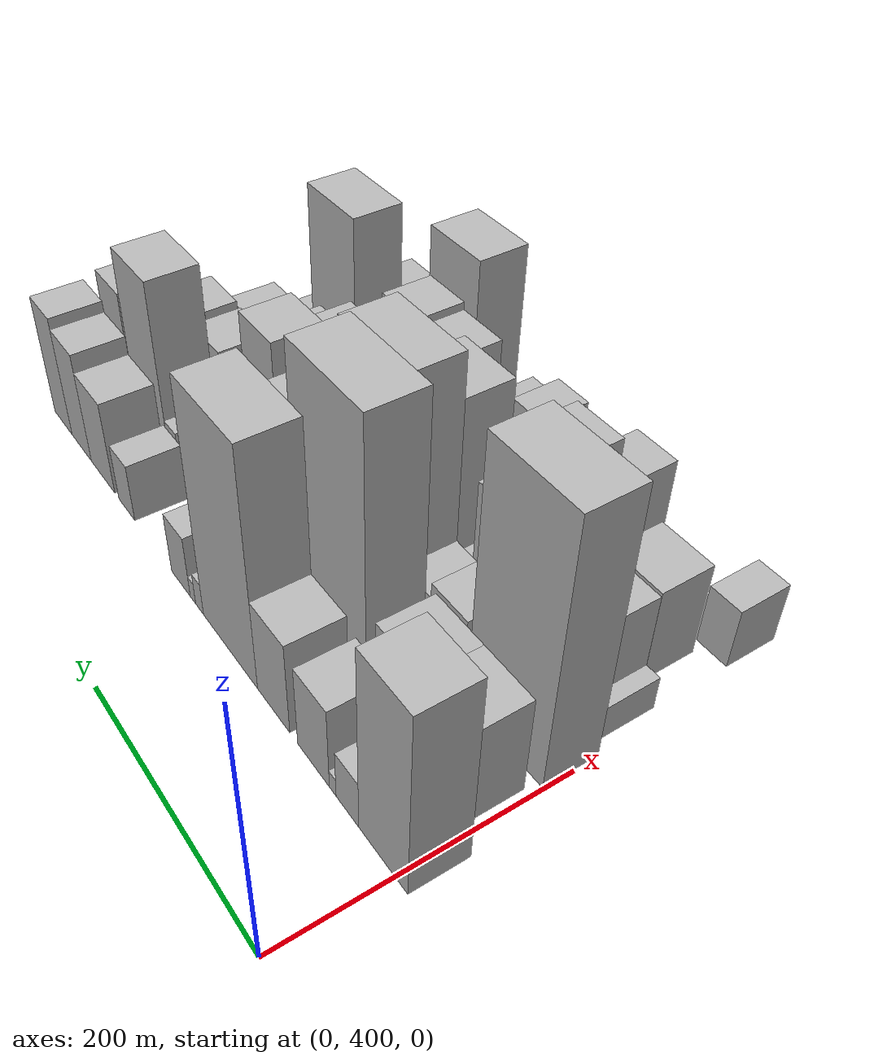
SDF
<sdf version="1.6">
 <world name="default">
  <model name="building_31">
   <static>1</static>
   <pose>100.0000 411.5241 0 0.000000 0.000000 0.000000</pose>
   <link name="link">
    <pose>0 0 73.50 0 0 0</pose>
    <collision name="collision"><geometry><box><size>40.0000 46.9688 147.0000</size></box></geometry></collision>
    <visual name="visual">
     <cast_shadows>0</cast_shadows>
     <geometry><box><size>40.0000 46.9688 147.0000</size></box></geometry>
     <material>
      <script>
       <uri>model://HANNAS_wall/materials/scripts</uri>
       <uri>model://HANNAS_wall/materials/textures</uri>
       <name>vrc/HANNAS_wall</name>
      </script>
     </material>
    </visual>
   </link>
  </model>
  <model name="building_32">
   <static>1</static>
   <pose>100.0000 446.6023 0 0.000000 0.000000 0.000000</pose>
   <link name="link">
    <pose>0 0 19.50 0 0 0</pose>
    <collision name="collision"><geometry><box><size>40.0000 23.1874 39.0000</size></box></geometry></collision>
    <visual name="visual">
     <cast_shadows>0</cast_shadows>
     <geometry><box><size>40.0000 23.1874 39.0000</size></box></geometry>
     <material>
      <script>
       <uri>model://HANNAS_wall/materials/scripts</uri>
       <uri>model://HANNAS_wall/materials/textures</uri>
       <name>vrc/HANNAS_wall</name>
      </script>
     </material>
    </visual>
   </link>
  </model>
  <model name="building_33">
   <static>1</static>
   <pose>100.0000 461.7570 0 0.000000 0.000000 0.000000</pose>
   <link name="link">
    <pose>0 0 7.50 0 0 0</pose>
    <collision name="collision"><geometry><box><size>40.0000 7.1221 15.0000</size></box></geometry></collision>
    <visual name="visual">
     <cast_shadows>0</cast_shadows>
     <geometry><box><size>40.0000 7.1221 15.0000</size></box></geometry>
     <material>
      <script>
       <uri>model://HANNAS_wall/materials/scripts</uri>
       <uri>model://HANNAS_wall/materials/textures</uri>
       <name>vrc/HANNAS_wall</name>
      </script>
     </material>
    </visual>
   </link>
  </model>
  <model name="building_34">
   <static>1</static>
   <pose>100.0000 482.5764 0 0.000000 0.000000 0.000000</pose>
   <link name="link">
    <pose>0 0 33.00 0 0 0</pose>
    <collision name="collision"><geometry><box><size>40.0000 34.5167 66.0000</size></box></geometry></collision>
    <visual name="visual">
     <cast_shadows>0</cast_shadows>
     <geometry><box><size>40.0000 34.5167 66.0000</size></box></geometry>
     <material>
      <script>
       <uri>model://HANNAS_wall/materials/scripts</uri>
       <uri>model://HANNAS_wall/materials/textures</uri>
       <name>vrc/HANNAS_wall</name>
      </script>
     </material>
    </visual>
   </link>
  </model>
  <model name="building_35">
   <static>1</static>
   <pose>100.0000 527.8713 0 0.000000 0.000000 0.000000</pose>
   <link name="link">
    <pose>0 0 37.50 0 0 0</pose>
    <collision name="collision"><geometry><box><size>40.0000 38.0731 75.0000</size></box></geometry></collision>
    <visual name="visual">
     <cast_shadows>0</cast_shadows>
     <geometry><box><size>40.0000 38.0731 75.0000</size></box></geometry>
     <material>
      <script>
       <uri>model://HANNAS_wall/materials/scripts</uri>
       <uri>model://HANNAS_wall/materials/textures</uri>
       <name>vrc/HANNAS_wall</name>
      </script>
     </material>
    </visual>
   </link>
  </model>
  <model name="building_36">
   <static>1</static>
   <pose>100.0000 582.0169 0 0.000000 0.000000 0.000000</pose>
   <link name="link">
    <pose>0 0 94.50 0 0 0</pose>
    <collision name="collision"><geometry><box><size>40.0000 70.2179 189.0000</size></box></geometry></collision>
    <visual name="visual">
     <cast_shadows>0</cast_shadows>
     <geometry><box><size>40.0000 70.2179 189.0000</size></box></geometry>
     <material>
      <script>
       <uri>model://HANNAS_wall/materials/scripts</uri>
       <uri>model://HANNAS_wall/materials/textures</uri>
       <name>vrc/HANNAS_wall</name>
      </script>
     </material>
    </visual>
   </link>
  </model>
  <model name="building_37">
   <static>1</static>
   <pose>100.0000 622.5473 0 0.000000 0.000000 0.000000</pose>
   <link name="link">
    <pose>0 0 13.50 0 0 0</pose>
    <collision name="collision"><geometry><box><size>40.0000 10.8430 27.0000</size></box></geometry></collision>
    <visual name="visual">
     <cast_shadows>0</cast_shadows>
     <geometry><box><size>40.0000 10.8430 27.0000</size></box></geometry>
     <material>
      <script>
       <uri>model://HANNAS_wall/materials/scripts</uri>
       <uri>model://HANNAS_wall/materials/textures</uri>
       <name>vrc/HANNAS_wall</name>
      </script>
     </material>
    </visual>
   </link>
  </model>
  <model name="building_38">
   <static>1</static>
   <pose>100.0000 631.7565 0 0.000000 0.000000 0.000000</pose>
   <link name="link">
    <pose>0 0 9.00 0 0 0</pose>
    <collision name="collision"><geometry><box><size>40.0000 7.5754 18.0000</size></box></geometry></collision>
    <visual name="visual">
     <cast_shadows>0</cast_shadows>
     <geometry><box><size>40.0000 7.5754 18.0000</size></box></geometry>
     <material>
      <script>
       <uri>model://HANNAS_wall/materials/scripts</uri>
       <uri>model://HANNAS_wall/materials/textures</uri>
       <name>vrc/HANNAS_wall</name>
      </script>
     </material>
    </visual>
   </link>
  </model>
  <model name="building_39">
   <static>1</static>
   <pose>100.0000 648.9793 0 0.000000 0.000000 0.000000</pose>
   <link name="link">
    <pose>0 0 25.50 0 0 0</pose>
    <collision name="collision"><geometry><box><size>40.0000 26.8701 51.0000</size></box></geometry></collision>
    <visual name="visual">
     <cast_shadows>0</cast_shadows>
     <geometry><box><size>40.0000 26.8701 51.0000</size></box></geometry>
     <material>
      <script>
       <uri>model://HANNAS_wall/materials/scripts</uri>
       <uri>model://HANNAS_wall/materials/textures</uri>
       <name>vrc/HANNAS_wall</name>
      </script>
     </material>
    </visual>
   </link>
  </model>
  <model name="building_40">
   <static>1</static>
   <pose>100.0000 732.4830 0 0.000000 0.000000 0.000000</pose>
   <link name="link">
    <pose>0 0 24.00 0 0 0</pose>
    <collision name="collision"><geometry><box><size>40.0000 26.0458 48.0000</size></box></geometry></collision>
    <visual name="visual">
     <cast_shadows>0</cast_shadows>
     <geometry><box><size>40.0000 26.0458 48.0000</size></box></geometry>
     <material>
      <script>
       <uri>model://HANNAS_wall/materials/scripts</uri>
       <uri>model://HANNAS_wall/materials/textures</uri>
       <name>vrc/HANNAS_wall</name>
      </script>
     </material>
    </visual>
   </link>
  </model>
  <model name="building_41">
   <static>1</static>
   <pose>100.0000 772.8730 0 0.000000 0.000000 0.000000</pose>
   <link name="link">
    <pose>0 0 39.00 0 0 0</pose>
    <collision name="collision"><geometry><box><size>40.0000 40.7342 78.0000</size></box></geometry></collision>
    <visual name="visual">
     <cast_shadows>0</cast_shadows>
     <geometry><box><size>40.0000 40.7342 78.0000</size></box></geometry>
     <material>
      <script>
       <uri>model://HANNAS_wall/materials/scripts</uri>
       <uri>model://HANNAS_wall/materials/textures</uri>
       <name>vrc/HANNAS_wall</name>
      </script>
     </material>
    </visual>
   </link>
  </model>
  <model name="building_42">
   <static>1</static>
   <pose>100.0000 810.9288 0 0.000000 0.000000 0.000000</pose>
   <link name="link">
    <pose>0 0 46.50 0 0 0</pose>
    <collision name="collision"><geometry><box><size>40.0000 35.3773 93.0000</size></box></geometry></collision>
    <visual name="visual">
     <cast_shadows>0</cast_shadows>
     <geometry><box><size>40.0000 35.3773 93.0000</size></box></geometry>
     <material>
      <script>
       <uri>model://HANNAS_wall/materials/scripts</uri>
       <uri>model://HANNAS_wall/materials/textures</uri>
       <name>vrc/HANNAS_wall</name>
      </script>
     </material>
    </visual>
   </link>
  </model>
  <model name="building_43">
   <static>1</static>
   <pose>100.0000 845.0833 0 0.000000 0.000000 0.000000</pose>
   <link name="link">
    <pose>0 0 51.00 0 0 0</pose>
    <collision name="collision"><geometry><box><size>40.0000 32.9317 102.0000</size></box></geometry></collision>
    <visual name="visual">
     <cast_shadows>0</cast_shadows>
     <geometry><box><size>40.0000 32.9317 102.0000</size></box></geometry>
     <material>
      <script>
       <uri>model://HANNAS_wall/materials/scripts</uri>
       <uri>model://HANNAS_wall/materials/textures</uri>
       <name>vrc/HANNAS_wall</name>
      </script>
     </material>
    </visual>
   </link>
  </model>
  <model name="building_82">
   <static>1</static>
   <pose>149.0000 427.5921 0 0.000000 0.000000 0.000000</pose>
   <link name="link">
    <pose>0 0 39.00 0 0 0</pose>
    <collision name="collision"><geometry><box><size>40.0000 43.9089 78.0000</size></box></geometry></collision>
    <visual name="visual">
     <cast_shadows>0</cast_shadows>
     <geometry><box><size>40.0000 43.9089 78.0000</size></box></geometry>
     <material>
      <script>
       <uri>model://HANNAS_wall/materials/scripts</uri>
       <uri>model://HANNAS_wall/materials/textures</uri>
       <name>vrc/HANNAS_wall</name>
      </script>
     </material>
    </visual>
   </link>
  </model>
  <model name="building_83">
   <static>1</static>
   <pose>149.0000 471.7200 0 0.000000 0.000000 0.000000</pose>
   <link name="link">
    <pose>0 0 39.00 0 0 0</pose>
    <collision name="collision"><geometry><box><size>40.0000 44.3469 78.0000</size></box></geometry></collision>
    <visual name="visual">
     <cast_shadows>0</cast_shadows>
     <geometry><box><size>40.0000 44.3469 78.0000</size></box></geometry>
     <material>
      <script>
       <uri>model://HANNAS_wall/materials/scripts</uri>
       <uri>model://HANNAS_wall/materials/textures</uri>
       <name>vrc/HANNAS_wall</name>
      </script>
     </material>
    </visual>
   </link>
  </model>
  <model name="building_84">
   <static>1</static>
   <pose>149.0000 541.4995 0 0.000000 0.000000 0.000000</pose>
   <link name="link">
    <pose>0 0 108.00 0 0 0</pose>
    <collision name="collision"><geometry><box><size>40.0000 75.2121 216.0000</size></box></geometry></collision>
    <visual name="visual">
     <cast_shadows>0</cast_shadows>
     <geometry><box><size>40.0000 75.2121 216.0000</size></box></geometry>
     <material>
      <script>
       <uri>model://HANNAS_wall/materials/scripts</uri>
       <uri>model://HANNAS_wall/materials/textures</uri>
       <name>vrc/HANNAS_wall</name>
      </script>
     </material>
    </visual>
   </link>
  </model>
  <model name="building_85">
   <static>1</static>
   <pose>149.0000 606.3390 0 0.000000 0.000000 0.000000</pose>
   <link name="link">
    <pose>0 0 73.50 0 0 0</pose>
    <collision name="collision"><geometry><box><size>40.0000 54.4669 147.0000</size></box></geometry></collision>
    <visual name="visual">
     <cast_shadows>0</cast_shadows>
     <geometry><box><size>40.0000 54.4669 147.0000</size></box></geometry>
     <material>
      <script>
       <uri>model://HANNAS_wall/materials/scripts</uri>
       <uri>model://HANNAS_wall/materials/textures</uri>
       <name>vrc/HANNAS_wall</name>
      </script>
     </material>
    </visual>
   </link>
  </model>
  <model name="building_86">
   <static>1</static>
   <pose>149.0000 657.2133 0 0.000000 0.000000 0.000000</pose>
   <link name="link">
    <pose>0 0 30.00 0 0 0</pose>
    <collision name="collision"><geometry><box><size>40.0000 31.2817 60.0000</size></box></geometry></collision>
    <visual name="visual">
     <cast_shadows>0</cast_shadows>
     <geometry><box><size>40.0000 31.2817 60.0000</size></box></geometry>
     <material>
      <script>
       <uri>model://HANNAS_wall/materials/scripts</uri>
       <uri>model://HANNAS_wall/materials/textures</uri>
       <name>vrc/HANNAS_wall</name>
      </script>
     </material>
    </visual>
   </link>
  </model>
  <model name="building_87">
   <static>1</static>
   <pose>149.0000 701.8061 0 0.000000 0.000000 0.000000</pose>
   <link name="link">
    <pose>0 0 49.50 0 0 0</pose>
    <collision name="collision"><geometry><box><size>40.0000 37.9039 99.0000</size></box></geometry></collision>
    <visual name="visual">
     <cast_shadows>0</cast_shadows>
     <geometry><box><size>40.0000 37.9039 99.0000</size></box></geometry>
     <material>
      <script>
       <uri>model://HANNAS_wall/materials/scripts</uri>
       <uri>model://HANNAS_wall/materials/textures</uri>
       <name>vrc/HANNAS_wall</name>
      </script>
     </material>
    </visual>
   </link>
  </model>
  <model name="building_88">
   <static>1</static>
   <pose>149.0000 730.8676 0 0.000000 0.000000 0.000000</pose>
   <link name="link">
    <pose>0 0 19.50 0 0 0</pose>
    <collision name="collision"><geometry><box><size>40.0000 20.2190 39.0000</size></box></geometry></collision>
    <visual name="visual">
     <cast_shadows>0</cast_shadows>
     <geometry><box><size>40.0000 20.2190 39.0000</size></box></geometry>
     <material>
      <script>
       <uri>model://HANNAS_wall/materials/scripts</uri>
       <uri>model://HANNAS_wall/materials/textures</uri>
       <name>vrc/HANNAS_wall</name>
      </script>
     </material>
    </visual>
   </link>
  </model>
  <model name="building_89">
   <static>1</static>
   <pose>149.0000 745.3936 0 0.000000 0.000000 0.000000</pose>
   <link name="link">
    <pose>0 0 9.00 0 0 0</pose>
    <collision name="collision"><geometry><box><size>40.0000 8.8329 18.0000</size></box></geometry></collision>
    <visual name="visual">
     <cast_shadows>0</cast_shadows>
     <geometry><box><size>40.0000 8.8329 18.0000</size></box></geometry>
     <material>
      <script>
       <uri>model://HANNAS_wall/materials/scripts</uri>
       <uri>model://HANNAS_wall/materials/textures</uri>
       <name>vrc/HANNAS_wall</name>
      </script>
     </material>
    </visual>
   </link>
  </model>
  <model name="building_90">
   <static>1</static>
   <pose>149.0000 758.5510 0 0.000000 0.000000 0.000000</pose>
   <link name="link">
    <pose>0 0 16.50 0 0 0</pose>
    <collision name="collision"><geometry><box><size>40.0000 17.4819 33.0000</size></box></geometry></collision>
    <visual name="visual">
     <cast_shadows>0</cast_shadows>
     <geometry><box><size>40.0000 17.4819 33.0000</size></box></geometry>
     <material>
      <script>
       <uri>model://HANNAS_wall/materials/scripts</uri>
       <uri>model://HANNAS_wall/materials/textures</uri>
       <name>vrc/HANNAS_wall</name>
      </script>
     </material>
    </visual>
   </link>
  </model>
  <model name="building_91">
   <static>1</static>
   <pose>149.0000 793.0292 0 0.000000 0.000000 0.000000</pose>
   <link name="link">
    <pose>0 0 73.50 0 0 0</pose>
    <collision name="collision"><geometry><box><size>40.0000 51.4746 147.0000</size></box></geometry></collision>
    <visual name="visual">
     <cast_shadows>0</cast_shadows>
     <geometry><box><size>40.0000 51.4746 147.0000</size></box></geometry>
     <material>
      <script>
       <uri>model://HANNAS_wall/materials/scripts</uri>
       <uri>model://HANNAS_wall/materials/textures</uri>
       <name>vrc/HANNAS_wall</name>
      </script>
     </material>
    </visual>
   </link>
  </model>
  <model name="building_92">
   <static>1</static>
   <pose>149.0000 840.5833 0 0.000000 0.000000 0.000000</pose>
   <link name="link">
    <pose>0 0 54.00 0 0 0</pose>
    <collision name="collision"><geometry><box><size>40.0000 37.6337 108.0000</size></box></geometry></collision>
    <visual name="visual">
     <cast_shadows>0</cast_shadows>
     <geometry><box><size>40.0000 37.6337 108.0000</size></box></geometry>
     <material>
      <script>
       <uri>model://HANNAS_wall/materials/scripts</uri>
       <uri>model://HANNAS_wall/materials/textures</uri>
       <name>vrc/HANNAS_wall</name>
      </script>
     </material>
    </visual>
   </link>
  </model>
  <model name="building_127">
   <static>1</static>
   <pose>198.0000 436.0220 0 0.000000 0.000000 0.000000</pose>
   <link name="link">
    <pose>0 0 103.50 0 0 0</pose>
    <collision name="collision"><geometry><box><size>40.0000 70.9859 207.0000</size></box></geometry></collision>
    <visual name="visual">
     <cast_shadows>0</cast_shadows>
     <geometry><box><size>40.0000 70.9859 207.0000</size></box></geometry>
     <material>
      <script>
       <uri>model://HANNAS_wall/materials/scripts</uri>
       <uri>model://HANNAS_wall/materials/textures</uri>
       <name>vrc/HANNAS_wall</name>
      </script>
     </material>
    </visual>
   </link>
  </model>
  <model name="building_128">
   <static>1</static>
   <pose>198.0000 493.1059 0 0.000000 0.000000 0.000000</pose>
   <link name="link">
    <pose>0 0 33.00 0 0 0</pose>
    <collision name="collision"><geometry><box><size>40.0000 35.1818 66.0000</size></box></geometry></collision>
    <visual name="visual">
     <cast_shadows>0</cast_shadows>
     <geometry><box><size>40.0000 35.1818 66.0000</size></box></geometry>
     <material>
      <script>
       <uri>model://HANNAS_wall/materials/scripts</uri>
       <uri>model://HANNAS_wall/materials/textures</uri>
       <name>vrc/HANNAS_wall</name>
      </script>
     </material>
    </visual>
   </link>
  </model>
  <model name="building_129">
   <static>1</static>
   <pose>198.0000 525.6254 0 0.000000 0.000000 0.000000</pose>
   <link name="link">
    <pose>0 0 27.00 0 0 0</pose>
    <collision name="collision"><geometry><box><size>40.0000 29.8573 54.0000</size></box></geometry></collision>
    <visual name="visual">
     <cast_shadows>0</cast_shadows>
     <geometry><box><size>40.0000 29.8573 54.0000</size></box></geometry>
     <material>
      <script>
       <uri>model://HANNAS_wall/materials/scripts</uri>
       <uri>model://HANNAS_wall/materials/textures</uri>
       <name>vrc/HANNAS_wall</name>
      </script>
     </material>
    </visual>
   </link>
  </model>
  <model name="building_130">
   <static>1</static>
   <pose>198.0000 574.1125 0 0.000000 0.000000 0.000000</pose>
   <link name="link">
    <pose>0 0 97.50 0 0 0</pose>
    <collision name="collision"><geometry><box><size>40.0000 67.1168 195.0000</size></box></geometry></collision>
    <visual name="visual">
     <cast_shadows>0</cast_shadows>
     <geometry><box><size>40.0000 67.1168 195.0000</size></box></geometry>
     <material>
      <script>
       <uri>model://HANNAS_wall/materials/scripts</uri>
       <uri>model://HANNAS_wall/materials/textures</uri>
       <name>vrc/HANNAS_wall</name>
      </script>
     </material>
    </visual>
   </link>
  </model>
  <model name="building_131">
   <static>1</static>
   <pose>198.0000 627.4312 0 0.000000 0.000000 0.000000</pose>
   <link name="link">
    <pose>0 0 18.00 0 0 0</pose>
    <collision name="collision"><geometry><box><size>40.0000 21.5207 36.0000</size></box></geometry></collision>
    <visual name="visual">
     <cast_shadows>0</cast_shadows>
     <geometry><box><size>40.0000 21.5207 36.0000</size></box></geometry>
     <material>
      <script>
       <uri>model://HANNAS_wall/materials/scripts</uri>
       <uri>model://HANNAS_wall/materials/textures</uri>
       <name>vrc/HANNAS_wall</name>
      </script>
     </material>
    </visual>
   </link>
  </model>
  <model name="building_132">
   <static>1</static>
   <pose>198.0000 648.4040 0 0.000000 0.000000 0.000000</pose>
   <link name="link">
    <pose>0 0 9.00 0 0 0</pose>
    <collision name="collision"><geometry><box><size>40.0000 8.4249 18.0000</size></box></geometry></collision>
    <visual name="visual">
     <cast_shadows>0</cast_shadows>
     <geometry><box><size>40.0000 8.4249 18.0000</size></box></geometry>
     <material>
      <script>
       <uri>model://HANNAS_wall/materials/scripts</uri>
       <uri>model://HANNAS_wall/materials/textures</uri>
       <name>vrc/HANNAS_wall</name>
      </script>
     </material>
    </visual>
   </link>
  </model>
  <model name="building_133">
   <static>1</static>
   <pose>198.0000 671.7233 0 0.000000 0.000000 0.000000</pose>
   <link name="link">
    <pose>0 0 34.50 0 0 0</pose>
    <collision name="collision"><geometry><box><size>40.0000 38.2138 69.0000</size></box></geometry></collision>
    <visual name="visual">
     <cast_shadows>0</cast_shadows>
     <geometry><box><size>40.0000 38.2138 69.0000</size></box></geometry>
     <material>
      <script>
       <uri>model://HANNAS_wall/materials/scripts</uri>
       <uri>model://HANNAS_wall/materials/textures</uri>
       <name>vrc/HANNAS_wall</name>
      </script>
     </material>
    </visual>
   </link>
  </model>
  <model name="building_134">
   <static>1</static>
   <pose>198.0000 712.3337 0 0.000000 0.000000 0.000000</pose>
   <link name="link">
    <pose>0 0 63.00 0 0 0</pose>
    <collision name="collision"><geometry><box><size>40.0000 43.0070 126.0000</size></box></geometry></collision>
    <visual name="visual">
     <cast_shadows>0</cast_shadows>
     <geometry><box><size>40.0000 43.0070 126.0000</size></box></geometry>
     <material>
      <script>
       <uri>model://HANNAS_wall/materials/scripts</uri>
       <uri>model://HANNAS_wall/materials/textures</uri>
       <name>vrc/HANNAS_wall</name>
      </script>
     </material>
    </visual>
   </link>
  </model>
  <model name="building_135">
   <static>1</static>
   <pose>198.0000 737.2312 0 0.000000 0.000000 0.000000</pose>
   <link name="link">
    <pose>0 0 7.50 0 0 0</pose>
    <collision name="collision"><geometry><box><size>40.0000 6.7880 15.0000</size></box></geometry></collision>
    <visual name="visual">
     <cast_shadows>0</cast_shadows>
     <geometry><box><size>40.0000 6.7880 15.0000</size></box></geometry>
     <material>
      <script>
       <uri>model://HANNAS_wall/materials/scripts</uri>
       <uri>model://HANNAS_wall/materials/textures</uri>
       <name>vrc/HANNAS_wall</name>
      </script>
     </material>
    </visual>
   </link>
  </model>
  <model name="building_136">
   <static>1</static>
   <pose>198.0000 753.7801 0 0.000000 0.000000 0.000000</pose>
   <link name="link">
    <pose>0 0 25.50 0 0 0</pose>
    <collision name="collision"><geometry><box><size>40.0000 26.3097 51.0000</size></box></geometry></collision>
    <visual name="visual">
     <cast_shadows>0</cast_shadows>
     <geometry><box><size>40.0000 26.3097 51.0000</size></box></geometry>
     <material>
      <script>
       <uri>model://HANNAS_wall/materials/scripts</uri>
       <uri>model://HANNAS_wall/materials/textures</uri>
       <name>vrc/HANNAS_wall</name>
      </script>
     </material>
    </visual>
   </link>
  </model>
  <model name="building_137">
   <static>1</static>
   <pose>198.0000 793.5846 0 0.000000 0.000000 0.000000</pose>
   <link name="link">
    <pose>0 0 34.50 0 0 0</pose>
    <collision name="collision"><geometry><box><size>40.0000 41.2993 69.0000</size></box></geometry></collision>
    <visual name="visual">
     <cast_shadows>0</cast_shadows>
     <geometry><box><size>40.0000 41.2993 69.0000</size></box></geometry>
     <material>
      <script>
       <uri>model://HANNAS_wall/materials/scripts</uri>
       <uri>model://HANNAS_wall/materials/textures</uri>
       <name>vrc/HANNAS_wall</name>
      </script>
     </material>
    </visual>
   </link>
  </model>
  <model name="building_138">
   <static>1</static>
   <pose>198.0000 839.7698 0 0.000000 0.000000 0.000000</pose>
   <link name="link">
    <pose>0 0 36.00 0 0 0</pose>
    <collision name="collision"><geometry><box><size>40.0000 41.0711 72.0000</size></box></geometry></collision>
    <visual name="visual">
     <cast_shadows>0</cast_shadows>
     <geometry><box><size>40.0000 41.0711 72.0000</size></box></geometry>
     <material>
      <script>
       <uri>model://HANNAS_wall/materials/scripts</uri>
       <uri>model://HANNAS_wall/materials/textures</uri>
       <name>vrc/HANNAS_wall</name>
      </script>
     </material>
    </visual>
   </link>
  </model>
  <model name="building_173">
   <static>1</static>
   <pose>247.0000 414.3676 0 0.000000 0.000000 0.000000</pose>
   <link name="link">
    <pose>0 0 13.50 0 0 0</pose>
    <collision name="collision"><geometry><box><size>40.0000 11.6138 27.0000</size></box></geometry></collision>
    <visual name="visual">
     <cast_shadows>0</cast_shadows>
     <geometry><box><size>40.0000 11.6138 27.0000</size></box></geometry>
     <material>
      <script>
       <uri>model://HANNAS_wall/materials/scripts</uri>
       <uri>model://HANNAS_wall/materials/textures</uri>
       <name>vrc/HANNAS_wall</name>
      </script>
     </material>
    </visual>
   </link>
  </model>
  <model name="building_174">
   <static>1</static>
   <pose>247.0000 441.8218 0 0.000000 0.000000 0.000000</pose>
   <link name="link">
    <pose>0 0 42.00 0 0 0</pose>
    <collision name="collision"><geometry><box><size>40.0000 43.2946 84.0000</size></box></geometry></collision>
    <visual name="visual">
     <cast_shadows>0</cast_shadows>
     <geometry><box><size>40.0000 43.2946 84.0000</size></box></geometry>
     <material>
      <script>
       <uri>model://HANNAS_wall/materials/scripts</uri>
       <uri>model://HANNAS_wall/materials/textures</uri>
       <name>vrc/HANNAS_wall</name>
      </script>
     </material>
    </visual>
   </link>
  </model>
  <model name="building_175">
   <static>1</static>
   <pose>247.0000 485.3087 0 0.000000 0.000000 0.000000</pose>
   <link name="link">
    <pose>0 0 27.00 0 0 0</pose>
    <collision name="collision"><geometry><box><size>40.0000 31.6792 54.0000</size></box></geometry></collision>
    <visual name="visual">
     <cast_shadows>0</cast_shadows>
     <geometry><box><size>40.0000 31.6792 54.0000</size></box></geometry>
     <material>
      <script>
       <uri>model://HANNAS_wall/materials/scripts</uri>
       <uri>model://HANNAS_wall/materials/textures</uri>
       <name>vrc/HANNAS_wall</name>
      </script>
     </material>
    </visual>
   </link>
  </model>
  <model name="building_176">
   <static>1</static>
   <pose>247.0000 519.5720 0 0.000000 0.000000 0.000000</pose>
   <link name="link">
    <pose>0 0 51.00 0 0 0</pose>
    <collision name="collision"><geometry><box><size>40.0000 30.8474 102.0000</size></box></geometry></collision>
    <visual name="visual">
     <cast_shadows>0</cast_shadows>
     <geometry><box><size>40.0000 30.8474 102.0000</size></box></geometry>
     <material>
      <script>
       <uri>model://HANNAS_wall/materials/scripts</uri>
       <uri>model://HANNAS_wall/materials/textures</uri>
       <name>vrc/HANNAS_wall</name>
      </script>
     </material>
    </visual>
   </link>
  </model>
  <model name="building_177">
   <static>1</static>
   <pose>247.0000 543.6154 0 0.000000 0.000000 0.000000</pose>
   <link name="link">
    <pose>0 0 15.00 0 0 0</pose>
    <collision name="collision"><geometry><box><size>40.0000 17.2395 30.0000</size></box></geometry></collision>
    <visual name="visual">
     <cast_shadows>0</cast_shadows>
     <geometry><box><size>40.0000 17.2395 30.0000</size></box></geometry>
     <material>
      <script>
       <uri>model://HANNAS_wall/materials/scripts</uri>
       <uri>model://HANNAS_wall/materials/textures</uri>
       <name>vrc/HANNAS_wall</name>
      </script>
     </material>
    </visual>
   </link>
  </model>
  <model name="building_178">
   <static>1</static>
   <pose>247.0000 581.5856 0 0.000000 0.000000 0.000000</pose>
   <link name="link">
    <pose>0 0 73.50 0 0 0</pose>
    <collision name="collision"><geometry><box><size>40.0000 50.7009 147.0000</size></box></geometry></collision>
    <visual name="visual">
     <cast_shadows>0</cast_shadows>
     <geometry><box><size>40.0000 50.7009 147.0000</size></box></geometry>
     <material>
      <script>
       <uri>model://HANNAS_wall/materials/scripts</uri>
       <uri>model://HANNAS_wall/materials/textures</uri>
       <name>vrc/HANNAS_wall</name>
      </script>
     </material>
    </visual>
   </link>
  </model>
  <model name="building_179">
   <static>1</static>
   <pose>247.0000 615.5650 0 0.000000 0.000000 0.000000</pose>
   <link name="link">
    <pose>0 0 16.50 0 0 0</pose>
    <collision name="collision"><geometry><box><size>40.0000 17.2580 33.0000</size></box></geometry></collision>
    <visual name="visual">
     <cast_shadows>0</cast_shadows>
     <geometry><box><size>40.0000 17.2580 33.0000</size></box></geometry>
     <material>
      <script>
       <uri>model://HANNAS_wall/materials/scripts</uri>
       <uri>model://HANNAS_wall/materials/textures</uri>
       <name>vrc/HANNAS_wall</name>
      </script>
     </material>
    </visual>
   </link>
  </model>
  <model name="building_180">
   <static>1</static>
   <pose>247.0000 644.1094 0 0.000000 0.000000 0.000000</pose>
   <link name="link">
    <pose>0 0 36.00 0 0 0</pose>
    <collision name="collision"><geometry><box><size>40.0000 39.8307 72.0000</size></box></geometry></collision>
    <visual name="visual">
     <cast_shadows>0</cast_shadows>
     <geometry><box><size>40.0000 39.8307 72.0000</size></box></geometry>
     <material>
      <script>
       <uri>model://HANNAS_wall/materials/scripts</uri>
       <uri>model://HANNAS_wall/materials/textures</uri>
       <name>vrc/HANNAS_wall</name>
      </script>
     </material>
    </visual>
   </link>
  </model>
  <model name="building_181">
   <static>1</static>
   <pose>247.0000 683.8051 0 0.000000 0.000000 0.000000</pose>
   <link name="link">
    <pose>0 0 55.50 0 0 0</pose>
    <collision name="collision"><geometry><box><size>40.0000 39.5608 111.0000</size></box></geometry></collision>
    <visual name="visual">
     <cast_shadows>0</cast_shadows>
     <geometry><box><size>40.0000 39.5608 111.0000</size></box></geometry>
     <material>
      <script>
       <uri>model://HANNAS_wall/materials/scripts</uri>
       <uri>model://HANNAS_wall/materials/textures</uri>
       <name>vrc/HANNAS_wall</name>
      </script>
     </material>
    </visual>
   </link>
  </model>
  <model name="building_182">
   <static>1</static>
   <pose>247.0000 720.9724 0 0.000000 0.000000 0.000000</pose>
   <link name="link">
    <pose>0 0 49.50 0 0 0</pose>
    <collision name="collision"><geometry><box><size>40.0000 34.7738 99.0000</size></box></geometry></collision>
    <visual name="visual">
     <cast_shadows>0</cast_shadows>
     <geometry><box><size>40.0000 34.7738 99.0000</size></box></geometry>
     <material>
      <script>
       <uri>model://HANNAS_wall/materials/scripts</uri>
       <uri>model://HANNAS_wall/materials/textures</uri>
       <name>vrc/HANNAS_wall</name>
      </script>
     </material>
    </visual>
   </link>
  </model>
  <model name="building_183">
   <static>1</static>
   <pose>247.0000 759.6722 0 0.000000 0.000000 0.000000</pose>
   <link name="link">
    <pose>0 0 36.00 0 0 0</pose>
    <collision name="collision"><geometry><box><size>40.0000 42.6259 72.0000</size></box></geometry></collision>
    <visual name="visual">
     <cast_shadows>0</cast_shadows>
     <geometry><box><size>40.0000 42.6259 72.0000</size></box></geometry>
     <material>
      <script>
       <uri>model://HANNAS_wall/materials/scripts</uri>
       <uri>model://HANNAS_wall/materials/textures</uri>
       <name>vrc/HANNAS_wall</name>
      </script>
     </material>
    </visual>
   </link>
  </model>
  <model name="building_184">
   <static>1</static>
   <pose>247.0000 791.6658 0 0.000000 0.000000 0.000000</pose>
   <link name="link">
    <pose>0 0 19.50 0 0 0</pose>
    <collision name="collision"><geometry><box><size>40.0000 21.3612 39.0000</size></box></geometry></collision>
    <visual name="visual">
     <cast_shadows>0</cast_shadows>
     <geometry><box><size>40.0000 21.3612 39.0000</size></box></geometry>
     <material>
      <script>
       <uri>model://HANNAS_wall/materials/scripts</uri>
       <uri>model://HANNAS_wall/materials/textures</uri>
       <name>vrc/HANNAS_wall</name>
      </script>
     </material>
    </visual>
   </link>
  </model>
  <model name="building_185">
   <static>1</static>
   <pose>247.0000 812.2053 0 0.000000 0.000000 0.000000</pose>
   <link name="link">
    <pose>0 0 19.50 0 0 0</pose>
    <collision name="collision"><geometry><box><size>40.0000 19.7178 39.0000</size></box></geometry></collision>
    <visual name="visual">
     <cast_shadows>0</cast_shadows>
     <geometry><box><size>40.0000 19.7178 39.0000</size></box></geometry>
     <material>
      <script>
       <uri>model://HANNAS_wall/materials/scripts</uri>
       <uri>model://HANNAS_wall/materials/textures</uri>
       <name>vrc/HANNAS_wall</name>
      </script>
     </material>
    </visual>
   </link>
  </model>
  <model name="building_186">
   <static>1</static>
   <pose>247.0000 837.0298 0 0.000000 0.000000 0.000000</pose>
   <link name="link">
    <pose>0 0 27.00 0 0 0</pose>
    <collision name="collision"><geometry><box><size>40.0000 29.9312 54.0000</size></box></geometry></collision>
    <visual name="visual">
     <cast_shadows>0</cast_shadows>
     <geometry><box><size>40.0000 29.9312 54.0000</size></box></geometry>
     <material>
      <script>
       <uri>model://HANNAS_wall/materials/scripts</uri>
       <uri>model://HANNAS_wall/materials/textures</uri>
       <name>vrc/HANNAS_wall</name>
      </script>
     </material>
    </visual>
   </link>
  </model>
  <model name="building_226">
   <static>1</static>
   <pose>296.0000 448.8718 0 0.000000 0.000000 0.000000</pose>
   <link name="link">
    <pose>0 0 37.50 0 0 0</pose>
    <collision name="collision"><geometry><box><size>40.0000 43.4319 75.0000</size></box></geometry></collision>
    <visual name="visual">
     <cast_shadows>0</cast_shadows>
     <geometry><box><size>40.0000 43.4319 75.0000</size></box></geometry>
     <material>
      <script>
       <uri>model://HANNAS_wall/materials/scripts</uri>
       <uri>model://HANNAS_wall/materials/textures</uri>
       <name>vrc/HANNAS_wall</name>
      </script>
     </material>
    </visual>
   </link>
  </model>
  <model name="building_227">
   <static>1</static>
   <pose>296.0000 487.1956 0 0.000000 0.000000 0.000000</pose>
   <link name="link">
    <pose>0 0 27.00 0 0 0</pose>
    <collision name="collision"><geometry><box><size>40.0000 27.2157 54.0000</size></box></geometry></collision>
    <visual name="visual">
     <cast_shadows>0</cast_shadows>
     <geometry><box><size>40.0000 27.2157 54.0000</size></box></geometry>
     <material>
      <script>
       <uri>model://HANNAS_wall/materials/scripts</uri>
       <uri>model://HANNAS_wall/materials/textures</uri>
       <name>vrc/HANNAS_wall</name>
      </script>
     </material>
    </visual>
   </link>
  </model>
  <model name="building_228">
   <static>1</static>
   <pose>296.0000 532.3442 0 0.000000 0.000000 0.000000</pose>
   <link name="link">
    <pose>0 0 55.50 0 0 0</pose>
    <collision name="collision"><geometry><box><size>40.0000 43.0815 111.0000</size></box></geometry></collision>
    <visual name="visual">
     <cast_shadows>0</cast_shadows>
     <geometry><box><size>40.0000 43.0815 111.0000</size></box></geometry>
     <material>
      <script>
       <uri>model://HANNAS_wall/materials/scripts</uri>
       <uri>model://HANNAS_wall/materials/textures</uri>
       <name>vrc/HANNAS_wall</name>
      </script>
     </material>
    </visual>
   </link>
  </model>
  <model name="building_229">
   <static>1</static>
   <pose>296.0000 573.6216 0 0.000000 0.000000 0.000000</pose>
   <link name="link">
    <pose>0 0 33.00 0 0 0</pose>
    <collision name="collision"><geometry><box><size>40.0000 39.4734 66.0000</size></box></geometry></collision>
    <visual name="visual">
     <cast_shadows>0</cast_shadows>
     <geometry><box><size>40.0000 39.4734 66.0000</size></box></geometry>
     <material>
      <script>
       <uri>model://HANNAS_wall/materials/scripts</uri>
       <uri>model://HANNAS_wall/materials/textures</uri>
       <name>vrc/HANNAS_wall</name>
      </script>
     </material>
    </visual>
   </link>
  </model>
  <model name="building_230">
   <static>1</static>
   <pose>296.0000 616.7722 0 0.000000 0.000000 0.000000</pose>
   <link name="link">
    <pose>0 0 22.50 0 0 0</pose>
    <collision name="collision"><geometry><box><size>40.0000 26.8278 45.0000</size></box></geometry></collision>
    <visual name="visual">
     <cast_shadows>0</cast_shadows>
     <geometry><box><size>40.0000 26.8278 45.0000</size></box></geometry>
     <material>
      <script>
       <uri>model://HANNAS_wall/materials/scripts</uri>
       <uri>model://HANNAS_wall/materials/textures</uri>
       <name>vrc/HANNAS_wall</name>
      </script>
     </material>
    </visual>
   </link>
  </model>
  <model name="building_231">
   <static>1</static>
   <pose>296.0000 651.3743 0 0.000000 0.000000 0.000000</pose>
   <link name="link">
    <pose>0 0 55.50 0 0 0</pose>
    <collision name="collision"><geometry><box><size>40.0000 42.3763 111.0000</size></box></geometry></collision>
    <visual name="visual">
     <cast_shadows>0</cast_shadows>
     <geometry><box><size>40.0000 42.3763 111.0000</size></box></geometry>
     <material>
      <script>
       <uri>model://HANNAS_wall/materials/scripts</uri>
       <uri>model://HANNAS_wall/materials/textures</uri>
       <name>vrc/HANNAS_wall</name>
      </script>
     </material>
    </visual>
   </link>
  </model>
  <model name="building_232">
   <static>1</static>
   <pose>296.0000 692.3288 0 0.000000 0.000000 0.000000</pose>
   <link name="link">
    <pose>0 0 58.50 0 0 0</pose>
    <collision name="collision"><geometry><box><size>40.0000 39.5327 117.0000</size></box></geometry></collision>
    <visual name="visual">
     <cast_shadows>0</cast_shadows>
     <geometry><box><size>40.0000 39.5327 117.0000</size></box></geometry>
     <material>
      <script>
       <uri>model://HANNAS_wall/materials/scripts</uri>
       <uri>model://HANNAS_wall/materials/textures</uri>
       <name>vrc/HANNAS_wall</name>
      </script>
     </material>
    </visual>
   </link>
  </model>
  <model name="building_233">
   <static>1</static>
   <pose>296.0000 730.0314 0 0.000000 0.000000 0.000000</pose>
   <link name="link">
    <pose>0 0 34.50 0 0 0</pose>
    <collision name="collision"><geometry><box><size>40.0000 35.8726 69.0000</size></box></geometry></collision>
    <visual name="visual">
     <cast_shadows>0</cast_shadows>
     <geometry><box><size>40.0000 35.8726 69.0000</size></box></geometry>
     <material>
      <script>
       <uri>model://HANNAS_wall/materials/scripts</uri>
       <uri>model://HANNAS_wall/materials/textures</uri>
       <name>vrc/HANNAS_wall</name>
      </script>
     </material>
    </visual>
   </link>
  </model>
  <model name="building_234">
   <static>1</static>
   <pose>296.0000 778.4063 0 0.000000 0.000000 0.000000</pose>
   <link name="link">
    <pose>0 0 78.00 0 0 0</pose>
    <collision name="collision"><geometry><box><size>40.0000 60.8771 156.0000</size></box></geometry></collision>
    <visual name="visual">
     <cast_shadows>0</cast_shadows>
     <geometry><box><size>40.0000 60.8771 156.0000</size></box></geometry>
     <material>
      <script>
       <uri>model://HANNAS_wall/materials/scripts</uri>
       <uri>model://HANNAS_wall/materials/textures</uri>
       <name>vrc/HANNAS_wall</name>
      </script>
     </material>
    </visual>
   </link>
  </model>
  <model name="building_235">
   <static>1</static>
   <pose>296.0000 821.0110 0 0.000000 0.000000 0.000000</pose>
   <link name="link">
    <pose>0 0 22.50 0 0 0</pose>
    <collision name="collision"><geometry><box><size>40.0000 24.3324 45.0000</size></box></geometry></collision>
    <visual name="visual">
     <cast_shadows>0</cast_shadows>
     <geometry><box><size>40.0000 24.3324 45.0000</size></box></geometry>
     <material>
      <script>
       <uri>model://HANNAS_wall/materials/scripts</uri>
       <uri>model://HANNAS_wall/materials/textures</uri>
       <name>vrc/HANNAS_wall</name>
      </script>
     </material>
    </visual>
   </link>
  </model>
  <model name="building_275">
   <static>1</static>
   <pose>345.0000 420.3077 0 0.000000 0.000000 0.000000</pose>
   <link name="link">
    <pose>0 0 24.00 0 0 0</pose>
    <collision name="collision"><geometry><box><size>40.0000 25.4065 48.0000</size></box></geometry></collision>
    <visual name="visual">
     <cast_shadows>0</cast_shadows>
     <geometry><box><size>40.0000 25.4065 48.0000</size></box></geometry>
     <material>
      <script>
       <uri>model://HANNAS_wall/materials/scripts</uri>
       <uri>model://HANNAS_wall/materials/textures</uri>
       <name>vrc/HANNAS_wall</name>
      </script>
     </material>
    </visual>
   </link>
  </model>
  <model name="building_276">
   <static>1</static>
   <pose>345.0000 527.3598 0 0.000000 0.000000 0.000000</pose>
   <link name="link">
    <pose>0 0 36.00 0 0 0</pose>
    <collision name="collision"><geometry><box><size>40.0000 37.5659 72.0000</size></box></geometry></collision>
    <visual name="visual">
     <cast_shadows>0</cast_shadows>
     <geometry><box><size>40.0000 37.5659 72.0000</size></box></geometry>
     <material>
      <script>
       <uri>model://HANNAS_wall/materials/scripts</uri>
       <uri>model://HANNAS_wall/materials/textures</uri>
       <name>vrc/HANNAS_wall</name>
      </script>
     </material>
    </visual>
   </link>
  </model>
  <model name="building_277">
   <static>1</static>
   <pose>345.0000 557.4934 0 0.000000 0.000000 0.000000</pose>
   <link name="link">
    <pose>0 0 22.50 0 0 0</pose>
    <collision name="collision"><geometry><box><size>40.0000 22.7012 45.0000</size></box></geometry></collision>
    <visual name="visual">
     <cast_shadows>0</cast_shadows>
     <geometry><box><size>40.0000 22.7012 45.0000</size></box></geometry>
     <material>
      <script>
       <uri>model://HANNAS_wall/materials/scripts</uri>
       <uri>model://HANNAS_wall/materials/textures</uri>
       <name>vrc/HANNAS_wall</name>
      </script>
     </material>
    </visual>
   </link>
  </model>
  <model name="building_278">
   <static>1</static>
   <pose>345.0000 580.9661 0 0.000000 0.000000 0.000000</pose>
   <link name="link">
    <pose>0 0 24.00 0 0 0</pose>
    <collision name="collision"><geometry><box><size>40.0000 24.2442 48.0000</size></box></geometry></collision>
    <visual name="visual">
     <cast_shadows>0</cast_shadows>
     <geometry><box><size>40.0000 24.2442 48.0000</size></box></geometry>
     <material>
      <script>
       <uri>model://HANNAS_wall/materials/scripts</uri>
       <uri>model://HANNAS_wall/materials/textures</uri>
       <name>vrc/HANNAS_wall</name>
      </script>
     </material>
    </visual>
   </link>
  </model>
  <model name="building_279">
   <static>1</static>
   <pose>345.0000 608.9293 0 0.000000 0.000000 0.000000</pose>
   <link name="link">
    <pose>0 0 31.50 0 0 0</pose>
    <collision name="collision"><geometry><box><size>40.0000 31.6824 63.0000</size></box></geometry></collision>
    <visual name="visual">
     <cast_shadows>0</cast_shadows>
     <geometry><box><size>40.0000 31.6824 63.0000</size></box></geometry>
     <material>
      <script>
       <uri>model://HANNAS_wall/materials/scripts</uri>
       <uri>model://HANNAS_wall/materials/textures</uri>
       <name>vrc/HANNAS_wall</name>
      </script>
     </material>
    </visual>
   </link>
  </model>
  <model name="building_280">
   <static>1</static>
   <pose>345.0000 638.1054 0 0.000000 0.000000 0.000000</pose>
   <link name="link">
    <pose>0 0 24.00 0 0 0</pose>
    <collision name="collision"><geometry><box><size>40.0000 26.6698 48.0000</size></box></geometry></collision>
    <visual name="visual">
     <cast_shadows>0</cast_shadows>
     <geometry><box><size>40.0000 26.6698 48.0000</size></box></geometry>
     <material>
      <script>
       <uri>model://HANNAS_wall/materials/scripts</uri>
       <uri>model://HANNAS_wall/materials/textures</uri>
       <name>vrc/HANNAS_wall</name>
      </script>
     </material>
    </visual>
   </link>
  </model>
  <model name="building_281">
   <static>1</static>
   <pose>345.0000 665.5118 0 0.000000 0.000000 0.000000</pose>
   <link name="link">
    <pose>0 0 9.00 0 0 0</pose>
    <collision name="collision"><geometry><box><size>40.0000 8.1428 18.0000</size></box></geometry></collision>
    <visual name="visual">
     <cast_shadows>0</cast_shadows>
     <geometry><box><size>40.0000 8.1428 18.0000</size></box></geometry>
     <material>
      <script>
       <uri>model://HANNAS_wall/materials/scripts</uri>
       <uri>model://HANNAS_wall/materials/textures</uri>
       <name>vrc/HANNAS_wall</name>
      </script>
     </material>
    </visual>
   </link>
  </model>
  <model name="building_282">
   <static>1</static>
   <pose>345.0000 697.7538 0 0.000000 0.000000 0.000000</pose>
   <link name="link">
    <pose>0 0 73.50 0 0 0</pose>
    <collision name="collision"><geometry><box><size>40.0000 56.3412 147.0000</size></box></geometry></collision>
    <visual name="visual">
     <cast_shadows>0</cast_shadows>
     <geometry><box><size>40.0000 56.3412 147.0000</size></box></geometry>
     <material>
      <script>
       <uri>model://HANNAS_wall/materials/scripts</uri>
       <uri>model://HANNAS_wall/materials/textures</uri>
       <name>vrc/HANNAS_wall</name>
      </script>
     </material>
    </visual>
   </link>
  </model>
  <model name="building_283">
   <static>1</static>
   <pose>345.0000 750.0114 0 0.000000 0.000000 0.000000</pose>
   <link name="link">
    <pose>0 0 36.00 0 0 0</pose>
    <collision name="collision"><geometry><box><size>40.0000 36.1741 72.0000</size></box></geometry></collision>
    <visual name="visual">
     <cast_shadows>0</cast_shadows>
     <geometry><box><size>40.0000 36.1741 72.0000</size></box></geometry>
     <material>
      <script>
       <uri>model://HANNAS_wall/materials/scripts</uri>
       <uri>model://HANNAS_wall/materials/textures</uri>
       <name>vrc/HANNAS_wall</name>
      </script>
     </material>
    </visual>
   </link>
  </model>
  <model name="building_284">
   <static>1</static>
   <pose>345.0000 787.0571 0 0.000000 0.000000 0.000000</pose>
   <link name="link">
    <pose>0 0 33.00 0 0 0</pose>
    <collision name="collision"><geometry><box><size>40.0000 37.9174 66.0000</size></box></geometry></collision>
    <visual name="visual">
     <cast_shadows>0</cast_shadows>
     <geometry><box><size>40.0000 37.9174 66.0000</size></box></geometry>
     <material>
      <script>
       <uri>model://HANNAS_wall/materials/scripts</uri>
       <uri>model://HANNAS_wall/materials/textures</uri>
       <name>vrc/HANNAS_wall</name>
      </script>
     </material>
    </visual>
   </link>
  </model>
  <model name="building_285">
   <static>1</static>
   <pose>345.0000 819.4739 0 0.000000 0.000000 0.000000</pose>
   <link name="link">
    <pose>0 0 7.50 0 0 0</pose>
    <collision name="collision"><geometry><box><size>40.0000 6.9161 15.0000</size></box></geometry></collision>
    <visual name="visual">
     <cast_shadows>0</cast_shadows>
     <geometry><box><size>40.0000 6.9161 15.0000</size></box></geometry>
     <material>
      <script>
       <uri>model://HANNAS_wall/materials/scripts</uri>
       <uri>model://HANNAS_wall/materials/textures</uri>
       <name>vrc/HANNAS_wall</name>
      </script>
     </material>
    </visual>
   </link>
  </model>
  <model name="building_286">
   <static>1</static>
   <pose>345.0000 842.0424 0 0.000000 0.000000 0.000000</pose>
   <link name="link">
    <pose>0 0 37.50 0 0 0</pose>
    <collision name="collision"><geometry><box><size>40.0000 38.2209 75.0000</size></box></geometry></collision>
    <visual name="visual">
     <cast_shadows>0</cast_shadows>
     <geometry><box><size>40.0000 38.2209 75.0000</size></box></geometry>
     <material>
      <script>
       <uri>model://HANNAS_wall/materials/scripts</uri>
       <uri>model://HANNAS_wall/materials/textures</uri>
       <name>vrc/HANNAS_wall</name>
      </script>
     </material>
    </visual>
   </link>
  </model>
 </world>
</sdf>
